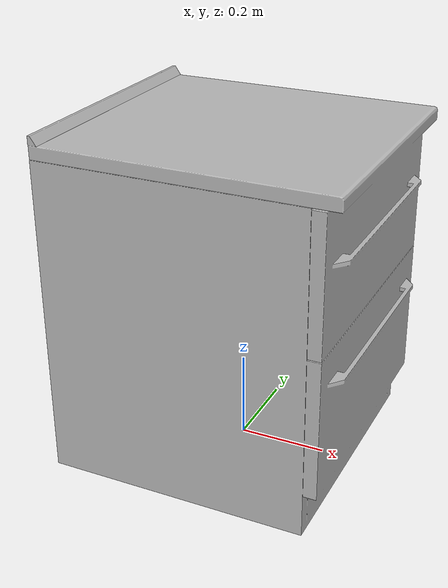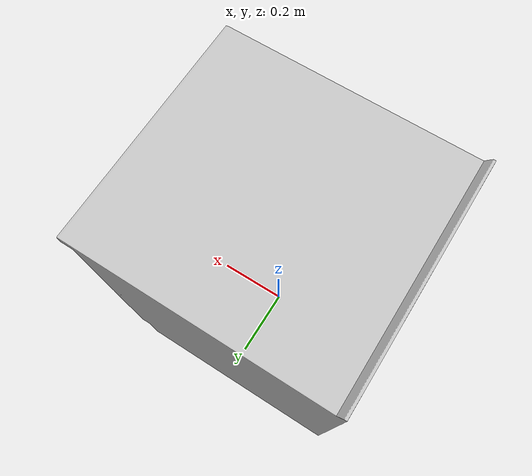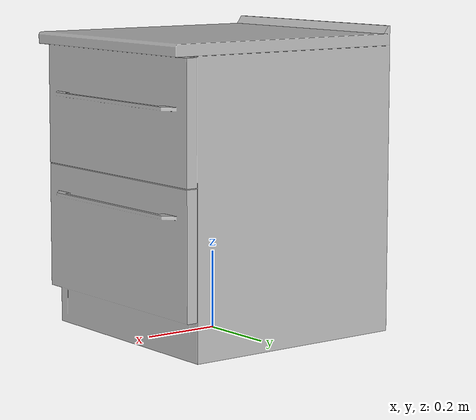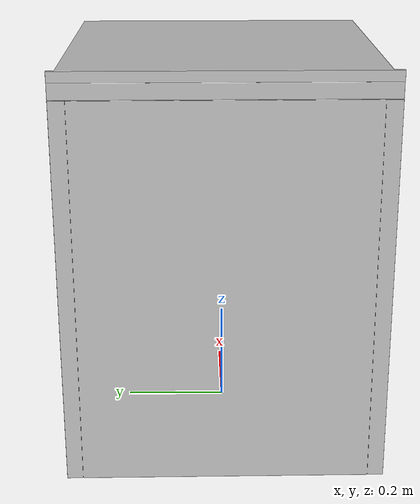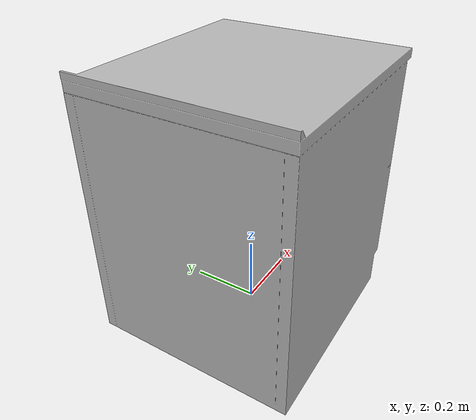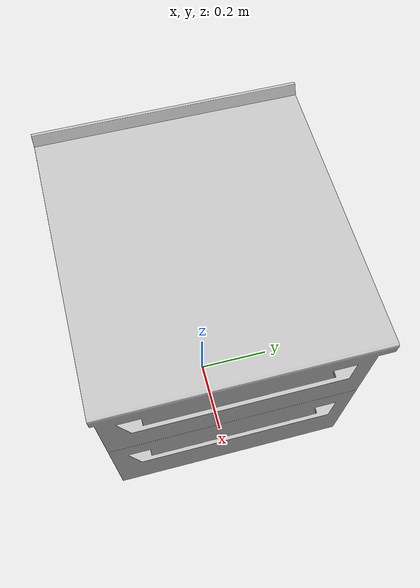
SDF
<?xml version='1.0'?>
<sdf version='1.4'>
  <model name='282'>
    <pose>0 0 0 0 0 0</pose>
    <static>true</static>
    <link name='link'>
      <collision name='collision'>
        <pose>0 0 0 0 0 0</pose>
        <geometry>
          <box>
            <size>0.66 0.6 2</size>
          </box>
        </geometry>
      </collision>
      <visual name='visual'>
        <pose>0 0 0 0 0 0</pose>
        <geometry>
          <mesh><uri>model://282/282.dae</uri></mesh>
        </geometry>
      </visual>
    </link>
  </model>
</sdf>
